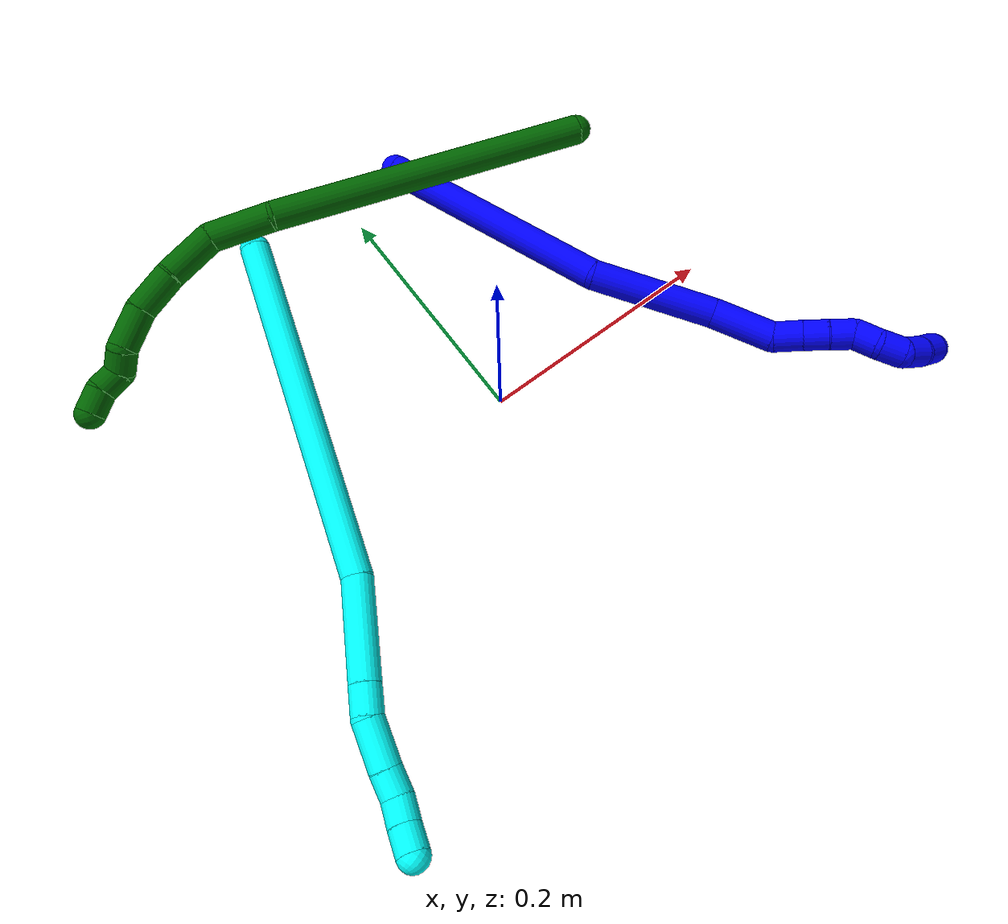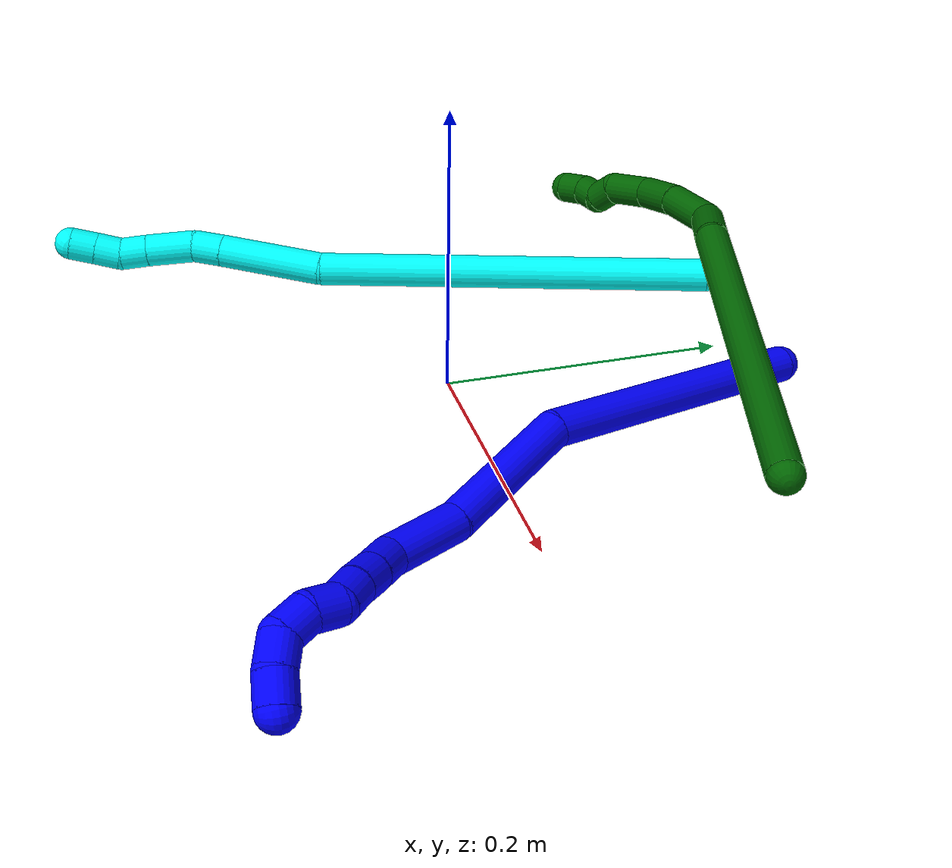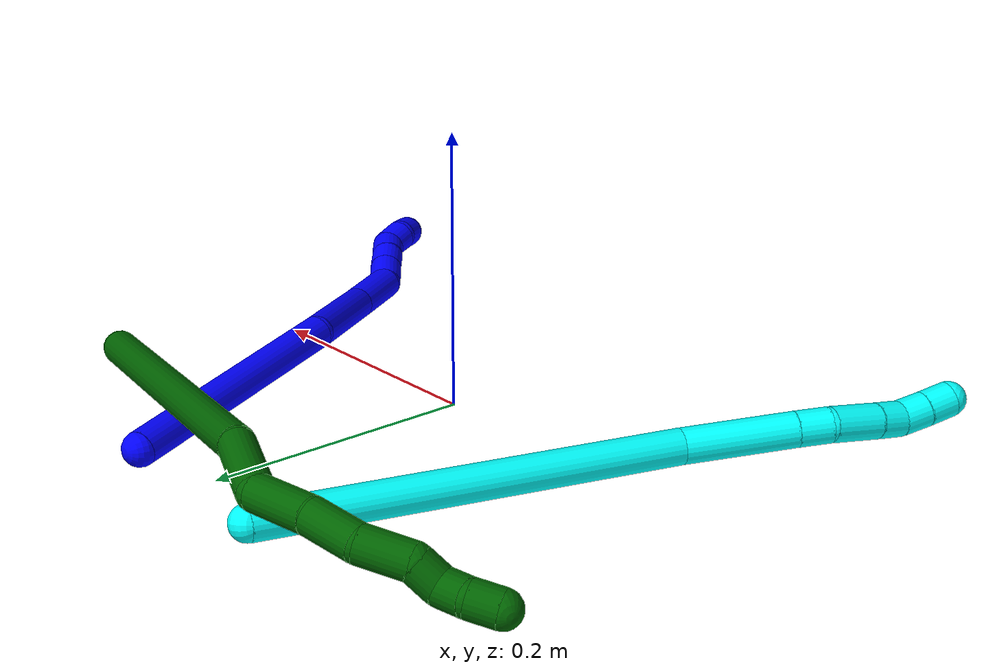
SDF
<sdf version="1.7">
 <world name="default">
  <model name="photoneo_s_sensor">
   <static>1</static>
   <pose>0 0 2 1.57079 1.57079 3.14159</pose>
   <link name="link">
    <inertial><mass>0.1</mass></inertial>
    <sensor name="sensor" type="depth">
     <update_rate>30</update_rate>
     <camera>
      <horizontal_fov>1.22</horizontal_fov>
      <image><width>1920</width><height>1200</height><format>B8G8R8</format></image>
      <clip><near>0.1</near><far>4</far></clip>
      <depth_camera><output>points</output></depth_camera>
     </camera>
     <plugin name="camera_plugin" filename="libgazebo_ros_depth_camera.so">
      <baseline>0.2</baseline>
      <alwaysOn>1</alwaysOn>
      <updateRate>0.0</updateRate>
      <cameraName>camera_ir</cameraName>
      <imageTopicName>/camera/color/image_raw</imageTopicName>
      <cameraInfoTopicName>/camera/color/camera_info</cameraInfoTopicName>
      <depthImageTopicName>/camera/depth/image_raw</depthImageTopicName>
      <depthImageCameraInfoTopicName>/camera/depth/camera_info</depthImageCameraInfoTopicName>
      <pointCloudTopicName>/camera/depth/points</pointCloudTopicName>
      <frameName>fr_optical</frameName>
      <pointCloudCutoff>0.1</pointCloudCutoff>
      <pointCloudCutoffMax>2.0</pointCloudCutoffMax>
      <distortionK1>0</distortionK1>
      <distortionK2>0</distortionK2>
      <distortionK3>0</distortionK3>
      <distortionT1>0</distortionT1>
      <distortionT2>0</distortionT2>
      <CxPrime>0</CxPrime>
      <Cx>0</Cx>
      <Cy>0</Cy>
      <focalLength>0</focalLength>
      <hackBaseline>0</hackBaseline>
     </plugin>
    </sensor>
   </link>
  </model>
  <model name="bin">
   <static>1</static>
   <link name="bottom">
    <collision name="collision-bottom">
     <pose>0 0 -0.01 0 -0 0</pose>
     <geometry><box><size>0.8 0.6 0.02</size></box></geometry>
     <surface>
      <friction><ode><mu>100</mu><mu2>100</mu2></ode></friction>
      <contact><collide_bitmask>65535</collide_bitmask></contact>
     </surface>
    </collision>
   </link>
   <link name="west_wall">
    <collision name="collision-west_wall">
     <pose>-0.41 0 0.1 0 -0 0</pose>
     <geometry><box><size>0.02 0.6 0.2</size></box></geometry>
     <surface>
      <friction><ode><mu>100</mu><mu2>100</mu2></ode></friction>
      <contact><collide_bitmask>65535</collide_bitmask></contact>
     </surface>
    </collision>
   </link>
   <link name="east_wall">
    <collision name="collision-east_wall">
     <pose>0.41 0 0.1 0 -0 0</pose>
     <geometry><box><size>0.02 0.6 0.2</size></box></geometry>
     <surface>
      <friction><ode><mu>100</mu><mu2>100</mu2></ode></friction>
      <contact><collide_bitmask>65535</collide_bitmask></contact>
     </surface>
    </collision>
   </link>
   <link name="south_wall">
    <collision name="collision-south_wall">
     <pose>0 -0.31 0.1 0 -0 0</pose>
     <geometry><box><size>0.8 0.02 0.2</size></box></geometry>
     <surface>
      <friction><ode><mu>100</mu><mu2>100</mu2></ode></friction>
      <contact><collide_bitmask>65535</collide_bitmask></contact>
     </surface>
    </collision>
   </link>
   <link name="north_wall">
    <collision name="collision-north_wall">
     <pose>0 0.31 0.1 0 -0 0</pose>
     <geometry><box><size>0.8 0.02 0.2</size></box></geometry>
     <surface>
      <friction><ode><mu>100</mu><mu2>100</mu2></ode></friction>
      <contact><collide_bitmask>65535</collide_bitmask></contact>
     </surface>
    </collision>
   </link>
  </model>
  <model name="1">
   <static>0</static>
   <link name="1">
    <collision name="collision-cylinder-e_1_1_4">
     <pose>0.00255 -0.032547 -0.095252 2.81234 0.025325 0.152154</pose>
     <geometry><cylinder><radius>0.0125</radius><length>0.201382</length></cylinder></geometry>
     <surface>
      <friction><ode><mu>1.16</mu><mu2>1.16</mu2><slip1>0</slip1><slip2>0</slip2></ode></friction>
      <contact><ode><kp>1e+06</kp><kd>1</kd><max_vel>0</max_vel><min_depth>0.001</min_depth></ode></contact>
     </surface>
    </collision>
    <visual name="visual-cylinder-e_1_1_4">
     <pose>0.00255 -0.032547 -0.095252 2.81234 0.025325 0.152154</pose>
     <geometry><cylinder><radius>0.0125</radius><length>0.201382</length></cylinder></geometry>
     <material><ambient>0 0 1 1</ambient></material>
    </visual>
    <collision name="collision-cylinder-e_2_4_5">
     <pose>0.02279 -0.089596 -0.232172 2.61003 0.350833 1.15427</pose>
     <geometry><cylinder><radius>0.0125</radius><length>0.102947</length></cylinder></geometry>
     <surface>
      <friction><ode><mu>1.16</mu><mu2>1.16</mu2><slip1>0</slip1><slip2>0</slip2></ode></friction>
      <contact><ode><kp>1e+06</kp><kd>1</kd><max_vel>0</max_vel><min_depth>0.001</min_depth></ode></contact>
     </surface>
    </collision>
    <visual name="visual-cylinder-e_2_4_5">
     <pose>0.02279 -0.089596 -0.232172 2.61003 0.350833 1.15427</pose>
     <geometry><cylinder><radius>0.0125</radius><length>0.102947</length></cylinder></geometry>
     <material><ambient>0 0 1 1</ambient></material>
    </visual>
    <collision name="collision-cylinder-e_3_5_6">
     <pose>0.044427 -0.124945 -0.297056 2.70448 0.152816 0.663867</pose>
     <geometry><cylinder><radius>0.0125</radius><length>0.051855</length></cylinder></geometry>
     <surface>
      <friction><ode><mu>1.16</mu><mu2>1.16</mu2><slip1>0</slip1><slip2>0</slip2></ode></friction>
      <contact><ode><kp>1e+06</kp><kd>1</kd><max_vel>0</max_vel><min_depth>0.001</min_depth></ode></contact>
     </surface>
    </collision>
    <visual name="visual-cylinder-e_3_5_6">
     <pose>0.044427 -0.124945 -0.297056 2.70448 0.152816 0.663867</pose>
     <geometry><cylinder><radius>0.0125</radius><length>0.051855</length></cylinder></geometry>
     <material><ambient>0 0 1 1</ambient></material>
    </visual>
    <collision name="collision-cylinder-e_4_6_7">
     <pose>0.049779 -0.144906 -0.327656 2.25178 0.119251 0.249114</pose>
     <geometry><cylinder><radius>0.0125</radius><length>0.023626</length></cylinder></geometry>
     <surface>
      <friction><ode><mu>1.16</mu><mu2>1.16</mu2><slip1>0</slip1><slip2>0</slip2></ode></friction>
      <contact><ode><kp>1e+06</kp><kd>1</kd><max_vel>0</max_vel><min_depth>0.001</min_depth></ode></contact>
     </surface>
    </collision>
    <visual name="visual-cylinder-e_4_6_7">
     <pose>0.049779 -0.144906 -0.327656 2.25178 0.119251 0.249114</pose>
     <geometry><cylinder><radius>0.0125</radius><length>0.023626</length></cylinder></geometry>
     <material><ambient>0 0 1 1</ambient></material>
    </visual>
    <collision name="collision-cylinder-e_5_7_8">
     <pose>0.052194 -0.161553 -0.341636 2.28988 0.100455 0.220739</pose>
     <geometry><cylinder><radius>0.0125</radius><length>0.02013</length></cylinder></geometry>
     <surface>
      <friction><ode><mu>1.16</mu><mu2>1.16</mu2><slip1>0</slip1><slip2>0</slip2></ode></friction>
      <contact><ode><kp>1e+06</kp><kd>1</kd><max_vel>0</max_vel><min_depth>0.001</min_depth></ode></contact>
     </surface>
    </collision>
    <visual name="visual-cylinder-e_5_7_8">
     <pose>0.052194 -0.161553 -0.341636 2.28988 0.100455 0.220739</pose>
     <geometry><cylinder><radius>0.0125</radius><length>0.02013</length></cylinder></geometry>
     <material><ambient>0 0 1 1</ambient></material>
    </visual>
    <collision name="collision-cylinder-e_6_8_9">
     <pose>0.055243 -0.176563 -0.354563 2.27347 0.205255 0.437254</pose>
     <geometry><cylinder><radius>0.0125</radius><length>0.020011</length></cylinder></geometry>
     <surface>
      <friction><ode><mu>1.16</mu><mu2>1.16</mu2><slip1>0</slip1><slip2>0</slip2></ode></friction>
      <contact><ode><kp>1e+06</kp><kd>1</kd><max_vel>0</max_vel><min_depth>0.001</min_depth></ode></contact>
     </surface>
    </collision>
    <visual name="visual-cylinder-e_6_8_9">
     <pose>0.055243 -0.176563 -0.354563 2.27347 0.205255 0.437254</pose>
     <geometry><cylinder><radius>0.0125</radius><length>0.020011</length></cylinder></geometry>
     <material><ambient>0 0 1 1</ambient></material>
    </visual>
    <collision name="collision-cylinder-e_7_9_10">
     <pose>0.056783 -0.187899 -0.370131 2.74572 -0.04981 -0.247136</pose>
     <geometry><cylinder><radius>0.0125</radius><length>0.020048</length></cylinder></geometry>
     <surface>
      <friction><ode><mu>1.16</mu><mu2>1.16</mu2><slip1>0</slip1><slip2>0</slip2></ode></friction>
      <contact><ode><kp>1e+06</kp><kd>1</kd><max_vel>0</max_vel><min_depth>0.001</min_depth></ode></contact>
     </surface>
    </collision>
    <visual name="visual-cylinder-e_7_9_10">
     <pose>0.056783 -0.187899 -0.370131 2.74572 -0.04981 -0.247136</pose>
     <geometry><cylinder><radius>0.0125</radius><length>0.020048</length></cylinder></geometry>
     <material><ambient>0 0 1 1</ambient></material>
    </visual>
    <collision name="collision-cylinder-e_8_10_11">
     <pose>0.059705 -0.196199 -0.38765 2.64952 0.349128 1.22451</pose>
     <geometry><cylinder><radius>0.0125</radius><length>0.020001</length></cylinder></geometry>
     <surface>
      <friction><ode><mu>1.16</mu><mu2>1.16</mu2><slip1>0</slip1><slip2>0</slip2></ode></friction>
      <contact><ode><kp>1e+06</kp><kd>1</kd><max_vel>0</max_vel><min_depth>0.001</min_depth></ode></contact>
     </surface>
    </collision>
    <visual name="visual-cylinder-e_8_10_11">
     <pose>0.059705 -0.196199 -0.38765 2.64952 0.349128 1.22451</pose>
     <geometry><cylinder><radius>0.0125</radius><length>0.020001</length></cylinder></geometry>
     <material><ambient>0 0 1 1</ambient></material>
    </visual>
    <collision name="collision-cylinder-e_9_11_12">
     <pose>0.070595 -0.206243 -0.399511 2.13909 0.843381 1.37211</pose>
     <geometry><cylinder><radius>0.0125</radius><length>0.02</length></cylinder></geometry>
     <surface>
      <friction><ode><mu>1.16</mu><mu2>1.16</mu2><slip1>0</slip1><slip2>0</slip2></ode></friction>
      <contact><ode><kp>1e+06</kp><kd>1</kd><max_vel>0</max_vel><min_depth>0.001</min_depth></ode></contact>
     </surface>
    </collision>
    <visual name="visual-cylinder-e_9_11_12">
     <pose>0.070595 -0.206243 -0.399511 2.13909 0.843381 1.37211</pose>
     <geometry><cylinder><radius>0.0125</radius><length>0.02</length></cylinder></geometry>
     <material><ambient>0 0 1 1</ambient></material>
    </visual>
    <collision name="collision-cylinder-e_10_12_2">
     <pose>0.086547 -0.216879 -0.404737 1.88713 1.01285 1.3063</pose>
     <geometry><cylinder><radius>0.0125</radius><length>0.02</length></cylinder></geometry>
     <surface>
      <friction><ode><mu>1.16</mu><mu2>1.16</mu2><slip1>0</slip1><slip2>0</slip2></ode></friction>
      <contact><ode><kp>1e+06</kp><kd>1</kd><max_vel>0</max_vel><min_depth>0.001</min_depth></ode></contact>
     </surface>
    </collision>
    <visual name="visual-cylinder-e_10_12_2">
     <pose>0.086547 -0.216879 -0.404737 1.88713 1.01285 1.3063</pose>
     <geometry><cylinder><radius>0.0125</radius><length>0.02</length></cylinder></geometry>
     <material><ambient>0 0 1 1</ambient></material>
    </visual>
    <collision name="collision-sphere-2">
     <pose>0.095031 -0.221911 -0.406384 0 -0 0</pose>
     <geometry><sphere><radius>0.0125</radius></sphere></geometry>
     <surface>
      <friction><ode><mu>1.16</mu><mu2>1.16</mu2><slip1>0</slip1><slip2>0</slip2></ode></friction>
      <contact><ode><kp>1e+06</kp><kd>1</kd><max_vel>0</max_vel><min_depth>0.001</min_depth></ode></contact>
     </surface>
    </collision>
    <visual name="visual-sphere-2">
     <pose>0.095031 -0.221911 -0.406384 0 -0 0</pose>
     <geometry><sphere><radius>0.0125</radius></sphere></geometry>
     <material><ambient>0 0 1 1</ambient></material>
    </visual>
    <collision name="collision-sphere-12">
     <pose>0.078064 -0.211848 -0.40309 0 -0 0</pose>
     <geometry><sphere><radius>0.0125</radius></sphere></geometry>
     <surface>
      <friction><ode><mu>1.16</mu><mu2>1.16</mu2><slip1>0</slip1><slip2>0</slip2></ode></friction>
      <contact><ode><kp>1e+06</kp><kd>1</kd><max_vel>0</max_vel><min_depth>0.001</min_depth></ode></contact>
     </surface>
    </collision>
    <visual name="visual-sphere-12">
     <pose>0.078064 -0.211848 -0.40309 0 -0 0</pose>
     <geometry><sphere><radius>0.0125</radius></sphere></geometry>
     <material><ambient>0 0 1 1</ambient></material>
    </visual>
    <collision name="collision-sphere-11">
     <pose>0.063126 -0.200639 -0.395932 0 -0 0</pose>
     <geometry><sphere><radius>0.0125</radius></sphere></geometry>
     <surface>
      <friction><ode><mu>1.16</mu><mu2>1.16</mu2><slip1>0</slip1><slip2>0</slip2></ode></friction>
      <contact><ode><kp>1e+06</kp><kd>1</kd><max_vel>0</max_vel><min_depth>0.001</min_depth></ode></contact>
     </surface>
    </collision>
    <visual name="visual-sphere-11">
     <pose>0.063126 -0.200639 -0.395932 0 -0 0</pose>
     <geometry><sphere><radius>0.0125</radius></sphere></geometry>
     <material><ambient>0 0 1 1</ambient></material>
    </visual>
    <collision name="collision-sphere-10">
     <pose>0.056284 -0.191759 -0.379368 0 -0 0</pose>
     <geometry><sphere><radius>0.0125</radius></sphere></geometry>
     <surface>
      <friction><ode><mu>1.16</mu><mu2>1.16</mu2><slip1>0</slip1><slip2>0</slip2></ode></friction>
      <contact><ode><kp>1e+06</kp><kd>1</kd><max_vel>0</max_vel><min_depth>0.001</min_depth></ode></contact>
     </surface>
    </collision>
    <visual name="visual-sphere-10">
     <pose>0.056284 -0.191759 -0.379368 0 -0 0</pose>
     <geometry><sphere><radius>0.0125</radius></sphere></geometry>
     <material><ambient>0 0 1 1</ambient></material>
    </visual>
    <collision name="collision-sphere-9">
     <pose>0.057282 -0.184038 -0.360893 0 -0 0</pose>
     <geometry><sphere><radius>0.0125</radius></sphere></geometry>
     <surface>
      <friction><ode><mu>1.16</mu><mu2>1.16</mu2><slip1>0</slip1><slip2>0</slip2></ode></friction>
      <contact><ode><kp>1e+06</kp><kd>1</kd><max_vel>0</max_vel><min_depth>0.001</min_depth></ode></contact>
     </surface>
    </collision>
    <visual name="visual-sphere-9">
     <pose>0.057282 -0.184038 -0.360893 0 -0 0</pose>
     <geometry><sphere><radius>0.0125</radius></sphere></geometry>
     <material><ambient>0 0 1 1</ambient></material>
    </visual>
    <collision name="collision-sphere-4">
     <pose>0.0051 -0.065094 -0.190503 0 -0 0</pose>
     <geometry><sphere><radius>0.0125</radius></sphere></geometry>
     <surface>
      <friction><ode><mu>1.16</mu><mu2>1.16</mu2><slip1>0</slip1><slip2>0</slip2></ode></friction>
      <contact><ode><kp>1e+06</kp><kd>1</kd><max_vel>0</max_vel><min_depth>0.001</min_depth></ode></contact>
     </surface>
    </collision>
    <visual name="visual-sphere-4">
     <pose>0.0051 -0.065094 -0.190503 0 -0 0</pose>
     <geometry><sphere><radius>0.0125</radius></sphere></geometry>
     <material><ambient>0 0 1 1</ambient></material>
    </visual>
    <collision name="collision-sphere-1">
     <geometry><sphere><radius>0.0125</radius></sphere></geometry>
     <surface>
      <friction><ode><mu>1.16</mu><mu2>1.16</mu2><slip1>0</slip1><slip2>0</slip2></ode></friction>
      <contact><ode><kp>1e+06</kp><kd>1</kd><max_vel>0</max_vel><min_depth>0.001</min_depth></ode></contact>
     </surface>
    </collision>
    <visual name="visual-sphere-1">
     <geometry><sphere><radius>0.0125</radius></sphere></geometry>
     <material><ambient>0 0 1 1</ambient></material>
    </visual>
    <collision name="collision-sphere-8">
     <pose>0.053203 -0.169088 -0.348233 0 -0 0</pose>
     <geometry><sphere><radius>0.0125</radius></sphere></geometry>
     <surface>
      <friction><ode><mu>1.16</mu><mu2>1.16</mu2><slip1>0</slip1><slip2>0</slip2></ode></friction>
      <contact><ode><kp>1e+06</kp><kd>1</kd><max_vel>0</max_vel><min_depth>0.001</min_depth></ode></contact>
     </surface>
    </collision>
    <visual name="visual-sphere-8">
     <pose>0.053203 -0.169088 -0.348233 0 -0 0</pose>
     <geometry><sphere><radius>0.0125</radius></sphere></geometry>
     <material><ambient>0 0 1 1</ambient></material>
    </visual>
    <collision name="collision-sphere-5">
     <pose>0.04048 -0.114097 -0.27384 0 -0 0</pose>
     <geometry><sphere><radius>0.0125</radius></sphere></geometry>
     <surface>
      <friction><ode><mu>1.16</mu><mu2>1.16</mu2><slip1>0</slip1><slip2>0</slip2></ode></friction>
      <contact><ode><kp>1e+06</kp><kd>1</kd><max_vel>0</max_vel><min_depth>0.001</min_depth></ode></contact>
     </surface>
    </collision>
    <visual name="visual-sphere-5">
     <pose>0.04048 -0.114097 -0.27384 0 -0 0</pose>
     <geometry><sphere><radius>0.0125</radius></sphere></geometry>
     <material><ambient>0 0 1 1</ambient></material>
    </visual>
    <collision name="collision-sphere-6">
     <pose>0.048374 -0.135793 -0.320272 0 -0 0</pose>
     <geometry><sphere><radius>0.0125</radius></sphere></geometry>
     <surface>
      <friction><ode><mu>1.16</mu><mu2>1.16</mu2><slip1>0</slip1><slip2>0</slip2></ode></friction>
      <contact><ode><kp>1e+06</kp><kd>1</kd><max_vel>0</max_vel><min_depth>0.001</min_depth></ode></contact>
     </surface>
    </collision>
    <visual name="visual-sphere-6">
     <pose>0.048374 -0.135793 -0.320272 0 -0 0</pose>
     <geometry><sphere><radius>0.0125</radius></sphere></geometry>
     <material><ambient>0 0 1 1</ambient></material>
    </visual>
    <collision name="collision-sphere-7">
     <pose>0.051185 -0.154019 -0.33504 0 -0 0</pose>
     <geometry><sphere><radius>0.0125</radius></sphere></geometry>
     <surface>
      <friction><ode><mu>1.16</mu><mu2>1.16</mu2><slip1>0</slip1><slip2>0</slip2></ode></friction>
      <contact><ode><kp>1e+06</kp><kd>1</kd><max_vel>0</max_vel><min_depth>0.001</min_depth></ode></contact>
     </surface>
    </collision>
    <visual name="visual-sphere-7">
     <pose>0.051185 -0.154019 -0.33504 0 -0 0</pose>
     <geometry><sphere><radius>0.0125</radius></sphere></geometry>
     <material><ambient>0 0 1 1</ambient></material>
    </visual>
    <inertial>
     <pose>0.027942 -0.097239 -0.222919 0 -0 0</pose>
     <mass>0.5</mass>
     <inertia>
      <ixx>0.000939</ixx>
      <ixy>0</ixy>
      <ixz>0</ixz>
      <iyy>-0.000492</iyy>
      <iyz>0</iyz>
      <izz>0.000193</izz>
     </inertia>
    </inertial>
   </link>
   <pose>0.053963 0.224201 0.011494 -1.50724 1.11863 0.079594</pose>
  </model>
  <model name="3">
   <static>0</static>
   <link name="3">
    <collision name="collision-cylinder-e_1_1_4">
     <pose>-0.05455 -0.108248 0.086036 0.899231 -0.375763 -0.182988</pose>
     <geometry><cylinder><radius>0.0125</radius><length>0.297291</length></cylinder></geometry>
     <surface>
      <friction><ode><mu>1.16</mu><mu2>1.16</mu2><slip1>0</slip1><slip2>0</slip2></ode></friction>
      <contact><ode><kp>1e+06</kp><kd>1</kd><max_vel>0</max_vel><min_depth>0.001</min_depth></ode></contact>
     </surface>
    </collision>
    <visual name="visual-cylinder-e_1_1_4">
     <pose>-0.05455 -0.108248 0.086036 0.899231 -0.375763 -0.182988</pose>
     <geometry><cylinder><radius>0.0125</radius><length>0.297291</length></cylinder></geometry>
     <material><ambient>0.003922 1 0.996078 1</ambient></material>
    </visual>
    <collision name="collision-cylinder-e_2_4_5">
     <pose>-0.119899 -0.240967 0.201818 0.688407 -0.273316 -0.098511</pose>
     <geometry><cylinder><radius>0.0125</radius><length>0.080008</length></cylinder></geometry>
     <surface>
      <friction><ode><mu>1.16</mu><mu2>1.16</mu2><slip1>0</slip1><slip2>0</slip2></ode></friction>
      <contact><ode><kp>1e+06</kp><kd>1</kd><max_vel>0</max_vel><min_depth>0.001</min_depth></ode></contact>
     </surface>
    </collision>
    <visual name="visual-cylinder-e_2_4_5">
     <pose>-0.119899 -0.240967 0.201818 0.688407 -0.273316 -0.098511</pose>
     <geometry><cylinder><radius>0.0125</radius><length>0.080008</length></cylinder></geometry>
     <material><ambient>0.003922 1 0.996078 1</ambient></material>
    </visual>
    <collision name="collision-cylinder-e_3_5_6">
     <pose>-0.134104 -0.272671 0.240355 0.688481 -0.290805 -0.104903</pose>
     <geometry><cylinder><radius>0.0125</radius><length>0.023763</length></cylinder></geometry>
     <surface>
      <friction><ode><mu>1.16</mu><mu2>1.16</mu2><slip1>0</slip1><slip2>0</slip2></ode></friction>
      <contact><ode><kp>1e+06</kp><kd>1</kd><max_vel>0</max_vel><min_depth>0.001</min_depth></ode></contact>
     </surface>
    </collision>
    <visual name="visual-cylinder-e_3_5_6">
     <pose>-0.134104 -0.272671 0.240355 0.688481 -0.290805 -0.104903</pose>
     <geometry><cylinder><radius>0.0125</radius><length>0.023763</length></cylinder></geometry>
     <material><ambient>0.003922 1 0.996078 1</ambient></material>
    </visual>
    <collision name="collision-cylinder-e_4_6_7">
     <pose>-0.146187 -0.293139 0.259058 0.927977 -0.483206 -0.245388</pose>
     <geometry><cylinder><radius>0.0125</radius><length>0.037349</length></cylinder></geometry>
     <surface>
      <friction><ode><mu>1.16</mu><mu2>1.16</mu2><slip1>0</slip1><slip2>0</slip2></ode></friction>
      <contact><ode><kp>1e+06</kp><kd>1</kd><max_vel>0</max_vel><min_depth>0.001</min_depth></ode></contact>
     </surface>
    </collision>
    <visual name="visual-cylinder-e_4_6_7">
     <pose>-0.146187 -0.293139 0.259058 0.927977 -0.483206 -0.245388</pose>
     <geometry><cylinder><radius>0.0125</radius><length>0.037349</length></cylinder></geometry>
     <material><ambient>0.003922 1 0.996078 1</ambient></material>
    </visual>
    <collision name="collision-cylinder-e_5_7_8">
     <pose>-0.159925 -0.314149 0.273968 0.999456 -0.501063 -0.277628</pose>
     <geometry><cylinder><radius>0.0125</radius><length>0.021073</length></cylinder></geometry>
     <surface>
      <friction><ode><mu>1.16</mu><mu2>1.16</mu2><slip1>0</slip1><slip2>0</slip2></ode></friction>
      <contact><ode><kp>1e+06</kp><kd>1</kd><max_vel>0</max_vel><min_depth>0.001</min_depth></ode></contact>
     </surface>
    </collision>
    <visual name="visual-cylinder-e_5_7_8">
     <pose>-0.159925 -0.314149 0.273968 0.999456 -0.501063 -0.277628</pose>
     <geometry><cylinder><radius>0.0125</radius><length>0.021073</length></cylinder></geometry>
     <material><ambient>0.003922 1 0.996078 1</ambient></material>
    </visual>
    <collision name="collision-cylinder-e_6_8_9">
     <pose>-0.166661 -0.329656 0.285278 0.886294 -0.166278 -0.079062</pose>
     <geometry><cylinder><radius>0.0125</radius><length>0.020246</length></cylinder></geometry>
     <surface>
      <friction><ode><mu>1.16</mu><mu2>1.16</mu2><slip1>0</slip1><slip2>0</slip2></ode></friction>
      <contact><ode><kp>1e+06</kp><kd>1</kd><max_vel>0</max_vel><min_depth>0.001</min_depth></ode></contact>
     </surface>
    </collision>
    <visual name="visual-cylinder-e_6_8_9">
     <pose>-0.166661 -0.329656 0.285278 0.886294 -0.166278 -0.079062</pose>
     <geometry><cylinder><radius>0.0125</radius><length>0.020246</length></cylinder></geometry>
     <material><ambient>0.003922 1 0.996078 1</ambient></material>
    </visual>
    <collision name="collision-cylinder-e_7_9_2">
     <pose>-0.170015 -0.345425 0.297536 0.933698 -0.166347 -0.083985</pose>
     <geometry><cylinder><radius>0.0125</radius><length>0.02027</length></cylinder></geometry>
     <surface>
      <friction><ode><mu>1.16</mu><mu2>1.16</mu2><slip1>0</slip1><slip2>0</slip2></ode></friction>
      <contact><ode><kp>1e+06</kp><kd>1</kd><max_vel>0</max_vel><min_depth>0.001</min_depth></ode></contact>
     </surface>
    </collision>
    <visual name="visual-cylinder-e_7_9_2">
     <pose>-0.170015 -0.345425 0.297536 0.933698 -0.166347 -0.083985</pose>
     <geometry><cylinder><radius>0.0125</radius><length>0.02027</length></cylinder></geometry>
     <material><ambient>0.003922 1 0.996078 1</ambient></material>
    </visual>
    <collision name="collision-sphere-2">
     <pose>-0.171693 -0.353459 0.303481 0 -0 0</pose>
     <geometry><sphere><radius>0.0125</radius></sphere></geometry>
     <surface>
      <friction><ode><mu>1.16</mu><mu2>1.16</mu2><slip1>0</slip1><slip2>0</slip2></ode></friction>
      <contact><ode><kp>1e+06</kp><kd>1</kd><max_vel>0</max_vel><min_depth>0.001</min_depth></ode></contact>
     </surface>
    </collision>
    <visual name="visual-sphere-2">
     <pose>-0.171693 -0.353459 0.303481 0 -0 0</pose>
     <geometry><sphere><radius>0.0125</radius></sphere></geometry>
     <material><ambient>0.003922 1 0.996078 1</ambient></material>
    </visual>
    <collision name="collision-sphere-9">
     <pose>-0.168337 -0.337391 0.29159 0 -0 0</pose>
     <geometry><sphere><radius>0.0125</radius></sphere></geometry>
     <surface>
      <friction><ode><mu>1.16</mu><mu2>1.16</mu2><slip1>0</slip1><slip2>0</slip2></ode></friction>
      <contact><ode><kp>1e+06</kp><kd>1</kd><max_vel>0</max_vel><min_depth>0.001</min_depth></ode></contact>
     </surface>
    </collision>
    <visual name="visual-sphere-9">
     <pose>-0.168337 -0.337391 0.29159 0 -0 0</pose>
     <geometry><sphere><radius>0.0125</radius></sphere></geometry>
     <material><ambient>0.003922 1 0.996078 1</ambient></material>
    </visual>
    <collision name="collision-sphere-4">
     <pose>-0.1091 -0.216496 0.172072 0 -0 0</pose>
     <geometry><sphere><radius>0.0125</radius></sphere></geometry>
     <surface>
      <friction><ode><mu>1.16</mu><mu2>1.16</mu2><slip1>0</slip1><slip2>0</slip2></ode></friction>
      <contact><ode><kp>1e+06</kp><kd>1</kd><max_vel>0</max_vel><min_depth>0.001</min_depth></ode></contact>
     </surface>
    </collision>
    <visual name="visual-sphere-4">
     <pose>-0.1091 -0.216496 0.172072 0 -0 0</pose>
     <geometry><sphere><radius>0.0125</radius></sphere></geometry>
     <material><ambient>0.003922 1 0.996078 1</ambient></material>
    </visual>
    <collision name="collision-sphere-1">
     <geometry><sphere><radius>0.0125</radius></sphere></geometry>
     <surface>
      <friction><ode><mu>1.16</mu><mu2>1.16</mu2><slip1>0</slip1><slip2>0</slip2></ode></friction>
      <contact><ode><kp>1e+06</kp><kd>1</kd><max_vel>0</max_vel><min_depth>0.001</min_depth></ode></contact>
     </surface>
    </collision>
    <visual name="visual-sphere-1">
     <geometry><sphere><radius>0.0125</radius></sphere></geometry>
     <material><ambient>0.003922 1 0.996078 1</ambient></material>
    </visual>
    <collision name="collision-sphere-8">
     <pose>-0.164986 -0.321922 0.278965 0 -0 0</pose>
     <geometry><sphere><radius>0.0125</radius></sphere></geometry>
     <surface>
      <friction><ode><mu>1.16</mu><mu2>1.16</mu2><slip1>0</slip1><slip2>0</slip2></ode></friction>
      <contact><ode><kp>1e+06</kp><kd>1</kd><max_vel>0</max_vel><min_depth>0.001</min_depth></ode></contact>
     </surface>
    </collision>
    <visual name="visual-sphere-8">
     <pose>-0.164986 -0.321922 0.278965 0 -0 0</pose>
     <geometry><sphere><radius>0.0125</radius></sphere></geometry>
     <material><ambient>0.003922 1 0.996078 1</ambient></material>
    </visual>
    <collision name="collision-sphere-5">
     <pose>-0.130697 -0.265439 0.231565 0 -0 0</pose>
     <geometry><sphere><radius>0.0125</radius></sphere></geometry>
     <surface>
      <friction><ode><mu>1.16</mu><mu2>1.16</mu2><slip1>0</slip1><slip2>0</slip2></ode></friction>
      <contact><ode><kp>1e+06</kp><kd>1</kd><max_vel>0</max_vel><min_depth>0.001</min_depth></ode></contact>
     </surface>
    </collision>
    <visual name="visual-sphere-5">
     <pose>-0.130697 -0.265439 0.231565 0 -0 0</pose>
     <geometry><sphere><radius>0.0125</radius></sphere></geometry>
     <material><ambient>0.003922 1 0.996078 1</ambient></material>
    </visual>
    <collision name="collision-sphere-6">
     <pose>-0.13751 -0.279903 0.249145 0 -0 0</pose>
     <geometry><sphere><radius>0.0125</radius></sphere></geometry>
     <surface>
      <friction><ode><mu>1.16</mu><mu2>1.16</mu2><slip1>0</slip1><slip2>0</slip2></ode></friction>
      <contact><ode><kp>1e+06</kp><kd>1</kd><max_vel>0</max_vel><min_depth>0.001</min_depth></ode></contact>
     </surface>
    </collision>
    <visual name="visual-sphere-6">
     <pose>-0.13751 -0.279903 0.249145 0 -0 0</pose>
     <geometry><sphere><radius>0.0125</radius></sphere></geometry>
     <material><ambient>0.003922 1 0.996078 1</ambient></material>
    </visual>
    <collision name="collision-sphere-7">
     <pose>-0.154863 -0.306375 0.268971 0 -0 0</pose>
     <geometry><sphere><radius>0.0125</radius></sphere></geometry>
     <surface>
      <friction><ode><mu>1.16</mu><mu2>1.16</mu2><slip1>0</slip1><slip2>0</slip2></ode></friction>
      <contact><ode><kp>1e+06</kp><kd>1</kd><max_vel>0</max_vel><min_depth>0.001</min_depth></ode></contact>
     </surface>
    </collision>
    <visual name="visual-sphere-7">
     <pose>-0.154863 -0.306375 0.268971 0 -0 0</pose>
     <geometry><sphere><radius>0.0125</radius></sphere></geometry>
     <material><ambient>0.003922 1 0.996078 1</ambient></material>
    </visual>
    <inertial>
     <pose>-0.089295 -0.178369 0.149384 0 -0 0</pose>
     <mass>0.5</mass>
     <inertia><ixx>0.001676</ixx><ixy>0</ixy><ixz>0</ixz><iyy>0.0011</iyy><iyz>0</iyz><izz>0.002488</izz></inertia>
    </inertial>
   </link>
   <pose>-0.085426 0.23092 0.01149 -1.15128 -1.18392 1.50266</pose>
  </model>
  <model name="6">
   <static>0</static>
   <link name="6">
    <collision name="collision-cylinder-e_1_1_4">
     <pose>-0.013049 0.010372 -0.134602 -3.06469 -0.096362 1.79475</pose>
     <geometry><cylinder><radius>0.0125</radius><length>0.27126</length></cylinder></geometry>
     <surface>
      <friction><ode><mu>1.16</mu><mu2>1.16</mu2><slip1>0</slip1><slip2>0</slip2></ode></friction>
      <contact><ode><kp>1e+06</kp><kd>1</kd><max_vel>0</max_vel><min_depth>0.001</min_depth></ode></contact>
     </surface>
    </collision>
    <visual name="visual-cylinder-e_1_1_4">
     <pose>-0.013049 0.010372 -0.134602 -3.06469 -0.096362 1.79475</pose>
     <geometry><cylinder><radius>0.0125</radius><length>0.27126</length></cylinder></geometry>
     <material><ambient>0 0.392157 0.003922 1</ambient></material>
    </visual>
    <collision name="collision-cylinder-e_2_4_5">
     <pose>-0.020821 0.021062 -0.295269 -3.12936 0.199774 -3.01969</pose>
     <geometry><cylinder><radius>0.0125</radius><length>0.053193</length></cylinder></geometry>
     <surface>
      <friction><ode><mu>1.16</mu><mu2>1.16</mu2><slip1>0</slip1><slip2>0</slip2></ode></friction>
      <contact><ode><kp>1e+06</kp><kd>1</kd><max_vel>0</max_vel><min_depth>0.001</min_depth></ode></contact>
     </surface>
    </collision>
    <visual name="visual-cylinder-e_2_4_5">
     <pose>-0.020821 0.021062 -0.295269 -3.12936 0.199774 -3.01969</pose>
     <geometry><cylinder><radius>0.0125</radius><length>0.053193</length></cylinder></geometry>
     <material><ambient>0 0.392157 0.003922 1</ambient></material>
    </visual>
    <collision name="collision-cylinder-e_3_5_6">
     <pose>-0.02052 0.013385 -0.341315 2.76091 -0.22728 -1.06956</pose>
     <geometry><cylinder><radius>0.0125</radius><length>0.04418</length></cylinder></geometry>
     <surface>
      <friction><ode><mu>1.16</mu><mu2>1.16</mu2><slip1>0</slip1><slip2>0</slip2></ode></friction>
      <contact><ode><kp>1e+06</kp><kd>1</kd><max_vel>0</max_vel><min_depth>0.001</min_depth></ode></contact>
     </surface>
    </collision>
    <visual name="visual-cylinder-e_3_5_6">
     <pose>-0.02052 0.013385 -0.341315 2.76091 -0.22728 -1.06956</pose>
     <geometry><cylinder><radius>0.0125</radius><length>0.04418</length></cylinder></geometry>
     <material><ambient>0 0.392157 0.003922 1</ambient></material>
    </visual>
    <collision name="collision-cylinder-e_4_6_7">
     <pose>-0.027536 -0.003227 -0.377143 2.64361 -0.112513 -0.435931</pose>
     <geometry><cylinder><radius>0.0125</radius><length>0.036305</length></cylinder></geometry>
     <surface>
      <friction><ode><mu>1.16</mu><mu2>1.16</mu2><slip1>0</slip1><slip2>0</slip2></ode></friction>
      <contact><ode><kp>1e+06</kp><kd>1</kd><max_vel>0</max_vel><min_depth>0.001</min_depth></ode></contact>
     </surface>
    </collision>
    <visual name="visual-cylinder-e_4_6_7">
     <pose>-0.027536 -0.003227 -0.377143 2.64361 -0.112513 -0.435931</pose>
     <geometry><cylinder><radius>0.0125</radius><length>0.036305</length></cylinder></geometry>
     <material><ambient>0 0.392157 0.003922 1</ambient></material>
    </visual>
    <collision name="collision-cylinder-e_5_7_8">
     <pose>-0.034146 -0.023285 -0.405035 2.38184 -0.268536 -0.652466</pose>
     <geometry><cylinder><radius>0.0125</radius><length>0.034461</length></cylinder></geometry>
     <surface>
      <friction><ode><mu>1.16</mu><mu2>1.16</mu2><slip1>0</slip1><slip2>0</slip2></ode></friction>
      <contact><ode><kp>1e+06</kp><kd>1</kd><max_vel>0</max_vel><min_depth>0.001</min_depth></ode></contact>
     </surface>
    </collision>
    <visual name="visual-cylinder-e_5_7_8">
     <pose>-0.034146 -0.023285 -0.405035 2.38184 -0.268536 -0.652466</pose>
     <geometry><cylinder><radius>0.0125</radius><length>0.034461</length></cylinder></geometry>
     <material><ambient>0 0.392157 0.003922 1</ambient></material>
    </visual>
    <collision name="collision-cylinder-e_6_8_9">
     <pose>-0.036794 -0.04325 -0.422125 2.10531 0.191757 0.334248</pose>
     <geometry><cylinder><radius>0.0125</radius><length>0.020178</length></cylinder></geometry>
     <surface>
      <friction><ode><mu>1.16</mu><mu2>1.16</mu2><slip1>0</slip1><slip2>0</slip2></ode></friction>
      <contact><ode><kp>1e+06</kp><kd>1</kd><max_vel>0</max_vel><min_depth>0.001</min_depth></ode></contact>
     </surface>
    </collision>
    <visual name="visual-cylinder-e_6_8_9">
     <pose>-0.036794 -0.04325 -0.422125 2.10531 0.191757 0.334248</pose>
     <geometry><cylinder><radius>0.0125</radius><length>0.020178</length></cylinder></geometry>
     <material><ambient>0 0.392157 0.003922 1</ambient></material>
    </visual>
    <collision name="collision-cylinder-e_7_9_10">
     <pose>-0.037168 -0.055531 -0.436163 2.74567 -0.231445 -1.05043</pose>
     <geometry><cylinder><radius>0.0125</radius><length>0.020027</length></cylinder></geometry>
     <surface>
      <friction><ode><mu>1.16</mu><mu2>1.16</mu2><slip1>0</slip1><slip2>0</slip2></ode></friction>
      <contact><ode><kp>1e+06</kp><kd>1</kd><max_vel>0</max_vel><min_depth>0.001</min_depth></ode></contact>
     </surface>
    </collision>
    <visual name="visual-cylinder-e_7_9_10">
     <pose>-0.037168 -0.055531 -0.436163 2.74567 -0.231445 -1.05043</pose>
     <geometry><cylinder><radius>0.0125</radius><length>0.020027</length></cylinder></geometry>
     <material><ambient>0 0.392157 0.003922 1</ambient></material>
    </visual>
    <collision name="collision-cylinder-e_8_10_2">
     <pose>-0.042282 -0.06607 -0.452234 2.37776 -0.279838 -0.674532</pose>
     <geometry><cylinder><radius>0.0125</radius><length>0.020397</length></cylinder></geometry>
     <surface>
      <friction><ode><mu>1.16</mu><mu2>1.16</mu2><slip1>0</slip1><slip2>0</slip2></ode></friction>
      <contact><ode><kp>1e+06</kp><kd>1</kd><max_vel>0</max_vel><min_depth>0.001</min_depth></ode></contact>
     </surface>
    </collision>
    <visual name="visual-cylinder-e_8_10_2">
     <pose>-0.042282 -0.06607 -0.452234 2.37776 -0.279838 -0.674532</pose>
     <geometry><cylinder><radius>0.0125</radius><length>0.020397</length></cylinder></geometry>
     <material><ambient>0 0.392157 0.003922 1</ambient></material>
    </visual>
    <collision name="collision-sphere-2">
     <pose>-0.045099 -0.07285 -0.459313 0 -0 0</pose>
     <geometry><sphere><radius>0.0125</radius></sphere></geometry>
     <surface>
      <friction><ode><mu>1.16</mu><mu2>1.16</mu2><slip1>0</slip1><slip2>0</slip2></ode></friction>
      <contact><ode><kp>1e+06</kp><kd>1</kd><max_vel>0</max_vel><min_depth>0.001</min_depth></ode></contact>
     </surface>
    </collision>
    <visual name="visual-sphere-2">
     <pose>-0.045099 -0.07285 -0.459313 0 -0 0</pose>
     <geometry><sphere><radius>0.0125</radius></sphere></geometry>
     <material><ambient>0 0.392157 0.003922 1</ambient></material>
    </visual>
    <collision name="collision-sphere-10">
     <pose>-0.039465 -0.05929 -0.445155 0 -0 0</pose>
     <geometry><sphere><radius>0.0125</radius></sphere></geometry>
     <surface>
      <friction><ode><mu>1.16</mu><mu2>1.16</mu2><slip1>0</slip1><slip2>0</slip2></ode></friction>
      <contact><ode><kp>1e+06</kp><kd>1</kd><max_vel>0</max_vel><min_depth>0.001</min_depth></ode></contact>
     </surface>
    </collision>
    <visual name="visual-sphere-10">
     <pose>-0.039465 -0.05929 -0.445155 0 -0 0</pose>
     <geometry><sphere><radius>0.0125</radius></sphere></geometry>
     <material><ambient>0 0.392157 0.003922 1</ambient></material>
    </visual>
    <collision name="collision-sphere-9">
     <pose>-0.034872 -0.051772 -0.42717 0 -0 0</pose>
     <geometry><sphere><radius>0.0125</radius></sphere></geometry>
     <surface>
      <friction><ode><mu>1.16</mu><mu2>1.16</mu2><slip1>0</slip1><slip2>0</slip2></ode></friction>
      <contact><ode><kp>1e+06</kp><kd>1</kd><max_vel>0</max_vel><min_depth>0.001</min_depth></ode></contact>
     </surface>
    </collision>
    <visual name="visual-sphere-9">
     <pose>-0.034872 -0.051772 -0.42717 0 -0 0</pose>
     <geometry><sphere><radius>0.0125</radius></sphere></geometry>
     <material><ambient>0 0.392157 0.003922 1</ambient></material>
    </visual>
    <collision name="collision-sphere-4">
     <pose>-0.026099 0.020744 -0.269204 0 -0 0</pose>
     <geometry><sphere><radius>0.0125</radius></sphere></geometry>
     <surface>
      <friction><ode><mu>1.16</mu><mu2>1.16</mu2><slip1>0</slip1><slip2>0</slip2></ode></friction>
      <contact><ode><kp>1e+06</kp><kd>1</kd><max_vel>0</max_vel><min_depth>0.001</min_depth></ode></contact>
     </surface>
    </collision>
    <visual name="visual-sphere-4">
     <pose>-0.026099 0.020744 -0.269204 0 -0 0</pose>
     <geometry><sphere><radius>0.0125</radius></sphere></geometry>
     <material><ambient>0 0.392157 0.003922 1</ambient></material>
    </visual>
    <collision name="collision-sphere-1">
     <geometry><sphere><radius>0.0125</radius></sphere></geometry>
     <surface>
      <friction><ode><mu>1.16</mu><mu2>1.16</mu2><slip1>0</slip1><slip2>0</slip2></ode></friction>
      <contact><ode><kp>1e+06</kp><kd>1</kd><max_vel>0</max_vel><min_depth>0.001</min_depth></ode></contact>
     </surface>
    </collision>
    <visual name="visual-sphere-1">
     <geometry><sphere><radius>0.0125</radius></sphere></geometry>
     <material><ambient>0 0.392157 0.003922 1</ambient></material>
    </visual>
    <collision name="collision-sphere-8">
     <pose>-0.038717 -0.034727 -0.417079 0 -0 0</pose>
     <geometry><sphere><radius>0.0125</radius></sphere></geometry>
     <surface>
      <friction><ode><mu>1.16</mu><mu2>1.16</mu2><slip1>0</slip1><slip2>0</slip2></ode></friction>
      <contact><ode><kp>1e+06</kp><kd>1</kd><max_vel>0</max_vel><min_depth>0.001</min_depth></ode></contact>
     </surface>
    </collision>
    <visual name="visual-sphere-8">
     <pose>-0.038717 -0.034727 -0.417079 0 -0 0</pose>
     <geometry><sphere><radius>0.0125</radius></sphere></geometry>
     <material><ambient>0 0.392157 0.003922 1</ambient></material>
    </visual>
    <collision name="collision-sphere-5">
     <pose>-0.015543 0.021381 -0.321334 0 -0 0</pose>
     <geometry><sphere><radius>0.0125</radius></sphere></geometry>
     <surface>
      <friction><ode><mu>1.16</mu><mu2>1.16</mu2><slip1>0</slip1><slip2>0</slip2></ode></friction>
      <contact><ode><kp>1e+06</kp><kd>1</kd><max_vel>0</max_vel><min_depth>0.001</min_depth></ode></contact>
     </surface>
    </collision>
    <visual name="visual-sphere-5">
     <pose>-0.015543 0.021381 -0.321334 0 -0 0</pose>
     <geometry><sphere><radius>0.0125</radius></sphere></geometry>
     <material><ambient>0 0.392157 0.003922 1</ambient></material>
    </visual>
    <collision name="collision-sphere-6">
     <pose>-0.025498 0.005388 -0.361296 0 -0 0</pose>
     <geometry><sphere><radius>0.0125</radius></sphere></geometry>
     <surface>
      <friction><ode><mu>1.16</mu><mu2>1.16</mu2><slip1>0</slip1><slip2>0</slip2></ode></friction>
      <contact><ode><kp>1e+06</kp><kd>1</kd><max_vel>0</max_vel><min_depth>0.001</min_depth></ode></contact>
     </surface>
    </collision>
    <visual name="visual-sphere-6">
     <pose>-0.025498 0.005388 -0.361296 0 -0 0</pose>
     <geometry><sphere><radius>0.0125</radius></sphere></geometry>
     <material><ambient>0 0.392157 0.003922 1</ambient></material>
    </visual>
    <collision name="collision-sphere-7">
     <pose>-0.029574 -0.011843 -0.39299 0 -0 0</pose>
     <geometry><sphere><radius>0.0125</radius></sphere></geometry>
     <surface>
      <friction><ode><mu>1.16</mu><mu2>1.16</mu2><slip1>0</slip1><slip2>0</slip2></ode></friction>
      <contact><ode><kp>1e+06</kp><kd>1</kd><max_vel>0</max_vel><min_depth>0.001</min_depth></ode></contact>
     </surface>
    </collision>
    <visual name="visual-sphere-7">
     <pose>-0.029574 -0.011843 -0.39299 0 -0 0</pose>
     <geometry><sphere><radius>0.0125</radius></sphere></geometry>
     <material><ambient>0 0.392157 0.003922 1</ambient></material>
    </visual>
    <inertial>
     <pose>-0.020159 0.000546 -0.242849 0 -0 0</pose>
     <mass>0.5</mass>
     <inertia><ixx>0.001237</ixx><ixy>0</ixy><ixz>0</ixz><iyy>0.001988</iyy><iyz>0</iyz><izz>1e-05</izz></inertia>
    </inertial>
   </link>
   <pose>0.19735 0.155747 0.024704 1.54515 0.952852 1.30692</pose>
  </model>
 </world>
</sdf>
